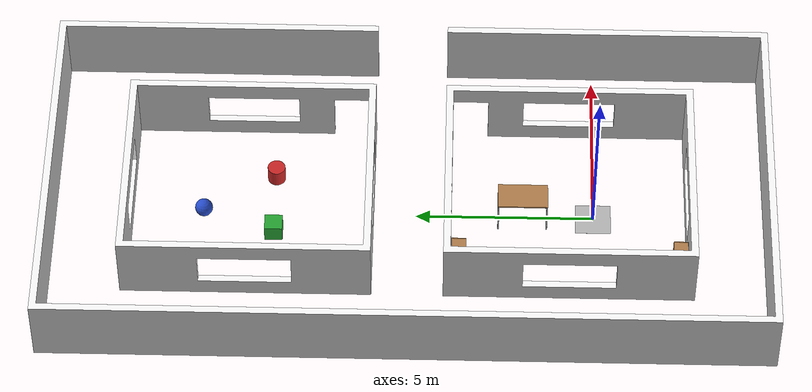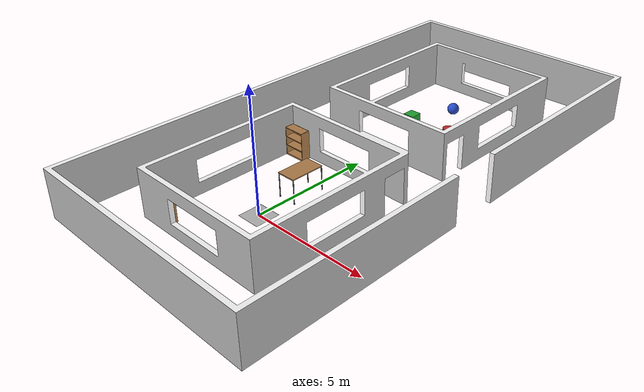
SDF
<?xml version="1.0" ?>
<sdf version="1.4">
  <world name="default">
    <scene>
      <ambient>0.500000 0.500000 0.500000 1.000000</ambient>
      <background>0.500000 0.500000 0.500000 1.000000</background>
      <shadows>0</shadows>
    </scene>
    <physics type="ode">
      <gravity>0.000000 0.000000 -9.800000</gravity>
      <ode>
        <solver>
          <type>quick</type>
          <iters>10</iters>
          <sor>1.300000</sor>
        </solver>
        <constraints>
          <cfm>0.000000</cfm>
          <erp>0.200000</erp>
          <contact_max_correcting_vel>100.000000</contact_max_correcting_vel>
          <contact_surface_layer>0.001000</contact_surface_layer>
        </constraints>
      </ode>
      <real_time_update_rate>1000.000000</real_time_update_rate>
      <max_step_size>0.001000</max_step_size>
    </physics>
    <model name="plane1_model">
      <link name="body">
        <collision name="geom_1">
          <geometry>
            <plane>
              <normal>0.000000 0.000000 1.000000</normal>
              <size>1.000000 1.000000</size>
            </plane>
          </geometry>
          <surface>
            <friction>
              <ode>
                <mu>10.000000</mu>
                <mu2>10.000000</mu2>
                <fdir1>0.000000 0.000000 0.000000</fdir1>
                <slip1>0.000000</slip1>
                <slip2>0.000000</slip2>
              </ode>
            </friction>
            <bounce>
              <restitution_coefficient>0.000000</restitution_coefficient>
              <threshold>1000000.000000</threshold>
            </bounce>
            <contact>
              <ode>
                <soft_cfm>0.000000</soft_cfm>
                <soft_erp>0.200000</soft_erp>
                <kp>10000000000.000000</kp>
                <kd>1.000000</kd>
                <max_vel>100.000000</max_vel>
                <min_depth>0.000100</min_depth>
              </ode>
            </contact>
          </surface>
        </collision>
        <visual name="visual_1">
          <geometry>
            <plane>
              <normal>0.000000 0.000000 1.000000</normal>
              <size>1.000000 1.000000</size>
            </plane>
          </geometry>
          <material>
            <script>
              <name>__default__</name>
            </script>
          </material>
          <cast_shadows>0</cast_shadows>
        </visual>
        <velocity_decay>
          <linear>0.000000</linear>
          <angular>0.000000</angular>
        </velocity_decay>
        <self_collide>0</self_collide>
        <kinematic>0</kinematic>
      </link>
      <static>1</static>
    </model>
    <model name="ens32_walls_model">
      <pose>0.000000 0.000000 0.000000 0.000000 -0.000000 0.000000</pose>
      <link name="body">
        <collision name="geom_1">
          <geometry>
            <mesh>
              <uri>segbot_test_world.dae</uri>
            </mesh>
          </geometry>
          <surface>
            <bounce />
            <friction>
              <ode />
            </friction>
            <contact>
              <ode />
            </contact>
          </surface>
        </collision>
        <visual name="visual_1">
          <geometry>
            <mesh>
              <uri>segbot_test_world.dae</uri>
            </mesh>
          </geometry>
          <material>
            <script>
              <name>__default__</name>
            </script>
          </material>
          <cast_shadows>0</cast_shadows>
        </visual>
        <velocity_decay>
          <linear>0.000000</linear>
          <angular>0.000000</angular>
        </velocity_decay>
        <self_collide>0</self_collide>
        <kinematic>0</kinematic>
      </link>
      <static>1</static>
    </model>
    <light name="my_light" type="directional">
      <pose>0.000000 0.000000 30.000000 0.000000 -0.000000 0.000000</pose>
      <diffuse>0.900000 0.900000 0.900000 1.000000</diffuse>
      <specular>0.100000 0.100000 0.100000 1.000000</specular>
      <attenuation>
        <range>20.000000</range>
      </attenuation>
      <direction>0.000000 0.000000 -1.000000</direction>
      <cast_shadows>0</cast_shadows>
    </light>
    <model name="table">
      <static>0</static>
      <link name="link">
        <collision name="surface">
          <pose>0.000000 0.000000 1.000000 0.000000 -0.000000 0.000000</pose>
          <geometry>
            <box>
              <size>1.500000 0.800000 0.030000</size>
            </box>
          </geometry>
          <surface>
            <bounce />
            <friction>
              <ode />
            </friction>
            <contact>
              <ode />
            </contact>
          </surface>
        </collision>
        <visual name="visual1">
          <pose>0.000000 0.000000 1.000000 0.000000 -0.000000 0.000000</pose>
          <geometry>
            <box>
              <size>1.400000 0.800000 0.040000</size>
            </box>
          </geometry>
          <material>
            <script>
              <uri>file://media/materials/scripts/gazebo.material</uri>
              <name>Gazebo/Wood</name>
            </script>
          </material>
        </visual>
        <collision name="front_left_leg">
          <pose>0.680000 0.380000 0.500000 0.000000 -0.000000 0.000000</pose>
          <geometry>
            <cylinder>
              <radius>0.020000</radius>
              <length>1.000000</length>
            </cylinder>
          </geometry>
          <surface>
            <bounce />
            <friction>
              <ode />
            </friction>
            <contact>
              <ode />
            </contact>
          </surface>
        </collision>
        <visual name="front_left_leg">
          <pose>0.680000 0.380000 0.500000 0.000000 -0.000000 0.000000</pose>
          <geometry>
            <cylinder>
              <radius>0.020000</radius>
              <length>1.000000</length>
            </cylinder>
          </geometry>
          <material>
            <script>
              <uri>file://media/materials/scripts/gazebo.material</uri>
              <name>Gazebo/Grey</name>
            </script>
          </material>
        </visual>
        <collision name="front_right_leg">
          <pose>0.680000 -0.380000 0.500000 0.000000 -0.000000 0.000000</pose>
          <geometry>
            <cylinder>
              <radius>0.020000</radius>
              <length>1.000000</length>
            </cylinder>
          </geometry>
          <surface>
            <bounce />
            <friction>
              <ode />
            </friction>
            <contact>
              <ode />
            </contact>
          </surface>
        </collision>
        <visual name="front_right_leg">
          <pose>0.680000 -0.380000 0.500000 0.000000 -0.000000 0.000000</pose>
          <geometry>
            <cylinder>
              <radius>0.020000</radius>
              <length>1.000000</length>
            </cylinder>
          </geometry>
          <material>
            <script>
              <uri>file://media/materials/scripts/gazebo.material</uri>
              <name>Gazebo/Grey</name>
            </script>
          </material>
        </visual>
        <collision name="back_right_leg">
          <pose>-0.680000 -0.380000 0.500000 0.000000 -0.000000 0.000000</pose>
          <geometry>
            <cylinder>
              <radius>0.020000</radius>
              <length>1.000000</length>
            </cylinder>
          </geometry>
          <surface>
            <bounce />
            <friction>
              <ode />
            </friction>
            <contact>
              <ode />
            </contact>
          </surface>
        </collision>
        <visual name="back_right_leg">
          <pose>-0.680000 -0.380000 0.500000 0.000000 -0.000000 0.000000</pose>
          <geometry>
            <cylinder>
              <radius>0.020000</radius>
              <length>1.000000</length>
            </cylinder>
          </geometry>
          <material>
            <script>
              <uri>file://media/materials/scripts/gazebo.material</uri>
              <name>Gazebo/Grey</name>
            </script>
          </material>
        </visual>
        <collision name="back_left_leg">
          <pose>-0.680000 0.380000 0.500000 0.000000 -0.000000 0.000000</pose>
          <geometry>
            <cylinder>
              <radius>0.020000</radius>
              <length>1.000000</length>
            </cylinder>
          </geometry>
          <surface>
            <bounce />
            <friction>
              <ode />
            </friction>
            <contact>
              <ode />
            </contact>
          </surface>
        </collision>
        <visual name="back_left_leg">
          <pose>-0.680000 0.380000 0.500000 0.000000 -0.000000 0.000000</pose>
          <geometry>
            <cylinder>
              <radius>0.020000</radius>
              <length>1.000000</length>
            </cylinder>
          </geometry>
          <material>
            <script>
              <uri>file://media/materials/scripts/gazebo.material</uri>
              <name>Gazebo/Grey</name>
            </script>
          </material>
        </visual>
        <velocity_decay>
          <linear>0.000000</linear>
          <angular>0.000000</angular>
        </velocity_decay>
        <self_collide>0</self_collide>
        <inertial>
          <mass>10.000000</mass>
        </inertial>
        <kinematic>0</kinematic>
      </link>
      <pose>0.000000 2.000000 0.000000 0.000000 -0.000000 1.570796</pose>
    </model>
    <model name="bookshelf">
      <static>1</static>
      <link name="link">
        <inertial>
          <mass>1.000000</mass>
        </inertial>
        <collision name="back">
          <pose>0.000000 0.005000 0.600000 0.000000 -0.000000 0.000000</pose>
          <geometry>
            <box>
              <size>0.900000 0.010000 1.200000</size>
            </box>
          </geometry>
          <surface>
            <bounce />
            <friction>
              <ode />
            </friction>
            <contact>
              <ode />
            </contact>
          </surface>
        </collision>
        <visual name="visual1">
          <pose>0.000000 0.005000 0.600000 0.000000 -0.000000 0.000000</pose>
          <geometry>
            <box>
              <size>0.900000 0.010000 1.200000</size>
            </box>
          </geometry>
          <material>
            <script>
              <uri>file://media/materials/scripts/gazebo.material</uri>
              <name>Gazebo/Wood</name>
            </script>
          </material>
        </visual>
        <collision name="left_side">
          <pose>0.450000 -0.195000 0.600000 0.000000 -0.000000 0.000000</pose>
          <geometry>
            <box>
              <size>0.020000 0.400000 1.200000</size>
            </box>
          </geometry>
          <surface>
            <bounce />
            <friction>
              <ode />
            </friction>
            <contact>
              <ode />
            </contact>
          </surface>
        </collision>
        <visual name="visual2">
          <pose>0.450000 -0.195000 0.600000 0.000000 -0.000000 0.000000</pose>
          <geometry>
            <box>
              <size>0.020000 0.400000 1.200000</size>
            </box>
          </geometry>
          <material>
            <script>
              <uri>file://media/materials/scripts/gazebo.material</uri>
              <name>Gazebo/Wood</name>
            </script>
          </material>
        </visual>
        <collision name="right_side">
          <pose>-0.450000 -0.195000 0.600000 0.000000 -0.000000 0.000000</pose>
          <geometry>
            <box>
              <size>0.020000 0.400000 1.200000</size>
            </box>
          </geometry>
          <surface>
            <bounce />
            <friction>
              <ode />
            </friction>
            <contact>
              <ode />
            </contact>
          </surface>
        </collision>
        <visual name="visual3">
          <pose>-0.450000 -0.195000 0.600000 0.000000 -0.000000 0.000000</pose>
          <geometry>
            <box>
              <size>0.020000 0.400000 1.200000</size>
            </box>
          </geometry>
          <material>
            <script>
              <uri>file://media/materials/scripts/gazebo.material</uri>
              <name>Gazebo/Wood</name>
            </script>
          </material>
        </visual>
        <collision name="bottom">
          <pose>0.000000 -0.195000 0.030000 0.000000 -0.000000 0.000000</pose>
          <geometry>
            <box>
              <size>0.880000 0.400000 0.060000</size>
            </box>
          </geometry>
          <surface>
            <bounce />
            <friction>
              <ode />
            </friction>
            <contact>
              <ode />
            </contact>
          </surface>
        </collision>
        <visual name="visual4">
          <pose>0.000000 -0.195000 0.030000 0.000000 -0.000000 0.000000</pose>
          <geometry>
            <box>
              <size>0.880000 0.400000 0.060000</size>
            </box>
          </geometry>
          <material>
            <script>
              <uri>file://media/materials/scripts/gazebo.material</uri>
              <name>Gazebo/Wood</name>
            </script>
          </material>
        </visual>
        <collision name="top">
          <pose>0.000000 -0.195000 1.190000 0.000000 -0.000000 0.000000</pose>
          <geometry>
            <box>
              <size>0.880000 0.400000 0.020000</size>
            </box>
          </geometry>
          <surface>
            <bounce />
            <friction>
              <ode />
            </friction>
            <contact>
              <ode />
            </contact>
          </surface>
        </collision>
        <visual name="visual5">
          <pose>0.000000 -0.195000 1.190000 0.000000 -0.000000 0.000000</pose>
          <geometry>
            <box>
              <size>0.880000 0.400000 0.020000</size>
            </box>
          </geometry>
          <material>
            <script>
              <uri>file://media/materials/scripts/gazebo.material</uri>
              <name>Gazebo/Wood</name>
            </script>
          </material>
        </visual>
        <collision name="low_shelf">
          <pose>0.000000 -0.195000 0.430000 0.000000 -0.000000 0.000000</pose>
          <geometry>
            <box>
              <size>0.880000 0.400000 0.020000</size>
            </box>
          </geometry>
          <surface>
            <bounce />
            <friction>
              <ode />
            </friction>
            <contact>
              <ode />
            </contact>
          </surface>
        </collision>
        <visual name="visual6">
          <pose>0.000000 -0.195000 0.430000 0.000000 -0.000000 0.000000</pose>
          <geometry>
            <box>
              <size>0.880000 0.400000 0.020000</size>
            </box>
          </geometry>
          <material>
            <script>
              <uri>file://media/materials/scripts/gazebo.material</uri>
              <name>Gazebo/Wood</name>
            </script>
          </material>
        </visual>
        <collision name="high_shelf">
          <pose>0.000000 -0.195000 0.800000 0.000000 -0.000000 0.000000</pose>
          <geometry>
            <box>
              <size>0.880000 0.400000 0.020000</size>
            </box>
          </geometry>
          <surface>
            <bounce />
            <friction>
              <ode />
            </friction>
            <contact>
              <ode />
            </contact>
          </surface>
        </collision>
        <visual name="visual7">
          <pose>0.000000 -0.195000 0.800000 0.000000 -0.000000 0.000000</pose>
          <geometry>
            <box>
              <size>0.880000 0.400000 0.020000</size>
            </box>
          </geometry>
          <material>
            <script>
              <uri>file://media/materials/scripts/gazebo.material</uri>
              <name>Gazebo/Wood</name>
            </script>
          </material>
        </visual>
        <velocity_decay>
          <linear>0.000000</linear>
          <angular>0.000000</angular>
        </velocity_decay>
        <self_collide>0</self_collide>
        <kinematic>0</kinematic>
      </link>
      <pose>-2.140000 3.970000 0.000000 0.000000 -0.000000 0.000000</pose>
    </model>
    <model name="bookshelf_0">
      <static>1</static>
      <link name="link">
        <inertial>
          <mass>1.000000</mass>
        </inertial>
        <collision name="back">
          <pose>0.000000 0.005000 0.600000 0.000000 -0.000000 0.000000</pose>
          <geometry>
            <box>
              <size>0.900000 0.010000 1.200000</size>
            </box>
          </geometry>
          <surface>
            <bounce />
            <friction>
              <ode />
            </friction>
            <contact>
              <ode />
            </contact>
          </surface>
        </collision>
        <visual name="visual1">
          <pose>0.000000 0.005000 0.600000 0.000000 -0.000000 0.000000</pose>
          <geometry>
            <box>
              <size>0.900000 0.010000 1.200000</size>
            </box>
          </geometry>
          <material>
            <script>
              <uri>file://media/materials/scripts/gazebo.material</uri>
              <name>Gazebo/Wood</name>
            </script>
          </material>
        </visual>
        <collision name="left_side">
          <pose>0.450000 -0.195000 0.600000 0.000000 -0.000000 0.000000</pose>
          <geometry>
            <box>
              <size>0.020000 0.400000 1.200000</size>
            </box>
          </geometry>
          <surface>
            <bounce />
            <friction>
              <ode />
            </friction>
            <contact>
              <ode />
            </contact>
          </surface>
        </collision>
        <visual name="visual2">
          <pose>0.450000 -0.195000 0.600000 0.000000 -0.000000 0.000000</pose>
          <geometry>
            <box>
              <size>0.020000 0.400000 1.200000</size>
            </box>
          </geometry>
          <material>
            <script>
              <uri>file://media/materials/scripts/gazebo.material</uri>
              <name>Gazebo/Wood</name>
            </script>
          </material>
        </visual>
        <collision name="right_side">
          <pose>-0.450000 -0.195000 0.600000 0.000000 -0.000000 0.000000</pose>
          <geometry>
            <box>
              <size>0.020000 0.400000 1.200000</size>
            </box>
          </geometry>
          <surface>
            <bounce />
            <friction>
              <ode />
            </friction>
            <contact>
              <ode />
            </contact>
          </surface>
        </collision>
        <visual name="visual3">
          <pose>-0.450000 -0.195000 0.600000 0.000000 -0.000000 0.000000</pose>
          <geometry>
            <box>
              <size>0.020000 0.400000 1.200000</size>
            </box>
          </geometry>
          <material>
            <script>
              <uri>file://media/materials/scripts/gazebo.material</uri>
              <name>Gazebo/Wood</name>
            </script>
          </material>
        </visual>
        <collision name="bottom">
          <pose>0.000000 -0.195000 0.030000 0.000000 -0.000000 0.000000</pose>
          <geometry>
            <box>
              <size>0.880000 0.400000 0.060000</size>
            </box>
          </geometry>
          <surface>
            <bounce />
            <friction>
              <ode />
            </friction>
            <contact>
              <ode />
            </contact>
          </surface>
        </collision>
        <visual name="visual4">
          <pose>0.000000 -0.195000 0.030000 0.000000 -0.000000 0.000000</pose>
          <geometry>
            <box>
              <size>0.880000 0.400000 0.060000</size>
            </box>
          </geometry>
          <material>
            <script>
              <uri>file://media/materials/scripts/gazebo.material</uri>
              <name>Gazebo/Wood</name>
            </script>
          </material>
        </visual>
        <collision name="top">
          <pose>0.000000 -0.195000 1.190000 0.000000 -0.000000 0.000000</pose>
          <geometry>
            <box>
              <size>0.880000 0.400000 0.020000</size>
            </box>
          </geometry>
          <surface>
            <bounce />
            <friction>
              <ode />
            </friction>
            <contact>
              <ode />
            </contact>
          </surface>
        </collision>
        <visual name="visual5">
          <pose>0.000000 -0.195000 1.190000 0.000000 -0.000000 0.000000</pose>
          <geometry>
            <box>
              <size>0.880000 0.400000 0.020000</size>
            </box>
          </geometry>
          <material>
            <script>
              <uri>file://media/materials/scripts/gazebo.material</uri>
              <name>Gazebo/Wood</name>
            </script>
          </material>
        </visual>
        <collision name="low_shelf">
          <pose>0.000000 -0.195000 0.430000 0.000000 -0.000000 0.000000</pose>
          <geometry>
            <box>
              <size>0.880000 0.400000 0.020000</size>
            </box>
          </geometry>
          <surface>
            <bounce />
            <friction>
              <ode />
            </friction>
            <contact>
              <ode />
            </contact>
          </surface>
        </collision>
        <visual name="visual6">
          <pose>0.000000 -0.195000 0.430000 0.000000 -0.000000 0.000000</pose>
          <geometry>
            <box>
              <size>0.880000 0.400000 0.020000</size>
            </box>
          </geometry>
          <material>
            <script>
              <uri>file://media/materials/scripts/gazebo.material</uri>
              <name>Gazebo/Wood</name>
            </script>
          </material>
        </visual>
        <collision name="high_shelf">
          <pose>0.000000 -0.195000 0.800000 0.000000 -0.000000 0.000000</pose>
          <geometry>
            <box>
              <size>0.880000 0.400000 0.020000</size>
            </box>
          </geometry>
          <surface>
            <bounce />
            <friction>
              <ode />
            </friction>
            <contact>
              <ode />
            </contact>
          </surface>
        </collision>
        <visual name="visual7">
          <pose>0.000000 -0.195000 0.800000 0.000000 -0.000000 0.000000</pose>
          <geometry>
            <box>
              <size>0.880000 0.400000 0.020000</size>
            </box>
          </geometry>
          <material>
            <script>
              <uri>file://media/materials/scripts/gazebo.material</uri>
              <name>Gazebo/Wood</name>
            </script>
          </material>
        </visual>
        <velocity_decay>
          <linear>0.000000</linear>
          <angular>0.000000</angular>
        </velocity_decay>
        <self_collide>0</self_collide>
        <kinematic>0</kinematic>
      </link>
      <pose>-2.140000 -2.580000 0.000000 0.000000 -0.000000 3.141593</pose>
    </model>
    <model name="unit_sphere_1">
      <pose>000000 11.000000 0.2500000 0.000000 -0.000000 0.000000</pose>
      <link name="link">
        <inertial>
          <mass>1.000000</mass>
        </inertial>
        <collision name="collision">
          <geometry>
            <sphere>
              <radius>0.250000</radius>
            </sphere>
          </geometry>
          <surface>
            <bounce />
            <friction>
              <ode />
            </friction>
            <contact>
              <ode />
            </contact>
          </surface>
        </collision>
        <visual name="visual">
          <geometry>
            <sphere>
              <radius>0.250000</radius>
            </sphere>
          </geometry>
          <material>
            <script>
              <uri>file://media/materials/scripts/gazebo.material</uri>
              <name>Gazebo/Blue</name>
            </script>
          </material>
        </visual>
        <velocity_decay>
          <linear>0.000000</linear>
          <angular>0.000000</angular>
        </velocity_decay>
        <self_collide>0</self_collide>
        <kinematic>0</kinematic>
      </link>
      <static>0</static>
    </model>
    <model name="unit_box_1">
      <pose>-0.675 9.0 0.250000 0.000000 -0.000000 0.000000</pose>
      <link name="link">
        <inertial>
          <mass>1.000000</mass>
        </inertial>
        <collision name="collision">
          <geometry>
            <box>
              <size>0.5000000 0.5000000 0.5000000</size>
            </box>
          </geometry>
          <surface>
            <bounce />
            <friction>
              <ode />
            </friction>
            <contact>
              <ode />
            </contact>
          </surface>
        </collision>
        <visual name="visual">
          <geometry>
            <box>
              <size>0.500000 0.500000 0.500000</size>
            </box>
          </geometry>
          <material>
            <script>
              <uri>file://media/materials/scripts/gazebo.material</uri>
              <name>Gazebo/Green</name>
            </script>
          </material>
        </visual>
        <velocity_decay>
          <linear>0.000000</linear>
          <angular>0.000000</angular>
        </velocity_decay>
        <self_collide>0</self_collide>
        <kinematic>0</kinematic>
      </link>
      <static>0</static>
    </model>
    <model name="unit_cylinder_1">
      <pose>1.300000 9.0 0.250000 0.000000 -0.000000 0.000000</pose>
      <link name="link">
        <inertial>
          <mass>1.000000</mass>
        </inertial>
        <collision name="collision">
          <geometry>
            <cylinder>
              <radius>0.250000</radius>
              <length>0.500000</length>
            </cylinder>
          </geometry>
          <surface>
            <bounce />
            <friction>
              <ode />
            </friction>
            <contact>
              <ode />
            </contact>
          </surface>
        </collision>
        <visual name="visual">
          <geometry>
            <cylinder>
              <radius>0.250000</radius>
              <length>0.500000</length>
            </cylinder>
          </geometry>
          <material>
            <script>
              <uri>file://media/materials/scripts/gazebo.material</uri>
              <name>Gazebo/Red</name>
            </script>
          </material>
        </visual>
        <velocity_decay>
          <linear>0.000000</linear>
          <angular>0.000000</angular>
        </velocity_decay>
        <self_collide>0</self_collide>
        <kinematic>0</kinematic>
      </link>
      <static>0</static>
    </model>
  </world>
</sdf>
